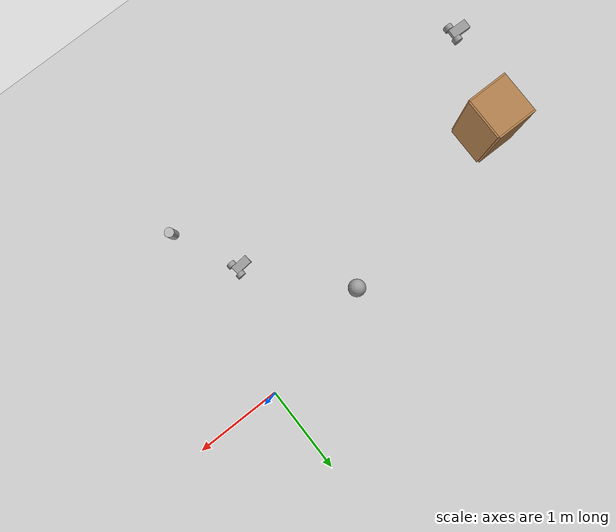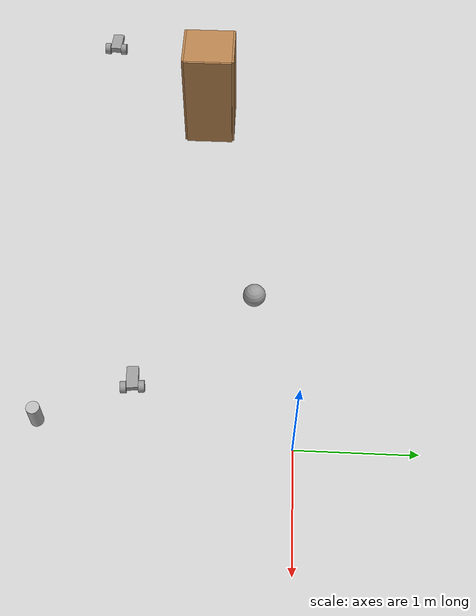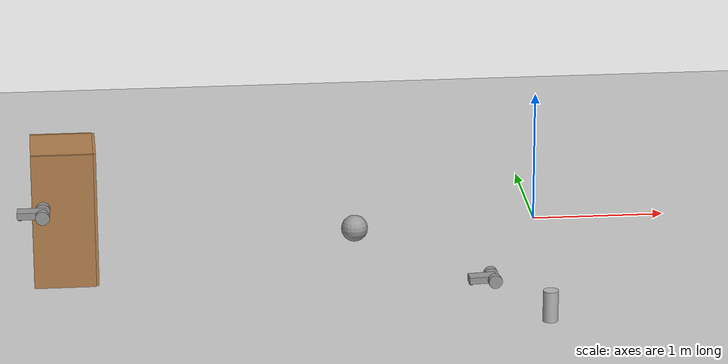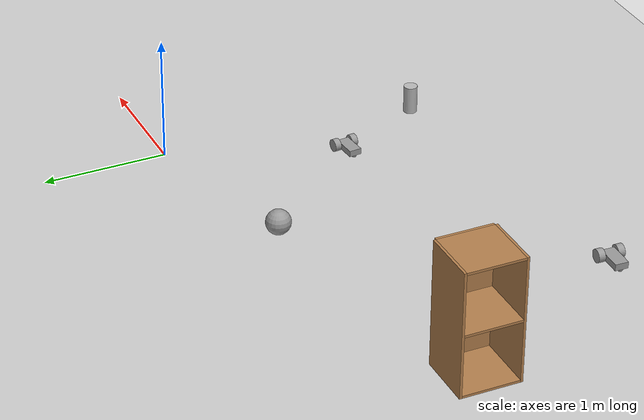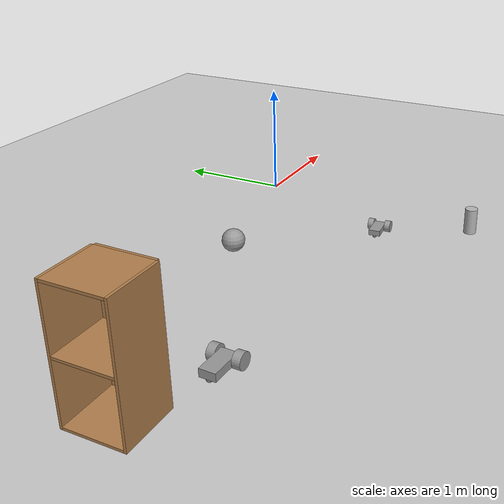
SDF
<sdf version="1.6">
 <world name="default">
  <model name="cabinet">
   <static>1</static>
   <link name="cabinet_bottom_plate">
    <inertial>
     <pose>0 0 -1 0 -0 0</pose>
     <inertia><ixx>2.05</ixx><ixy>0</ixy><ixz>0</ixz><iyy>2.05</iyy><iyz>0</iyz><izz>2.05</izz></inertia>
     <mass>25</mass>
    </inertial>
    <collision name="cabinet_bottom_plate_geom">
     <pose>0 0 0.01 0 -0 0</pose>
     <geometry><box><size>0.45 0.45 0.02</size></box></geometry>
    </collision>
    <visual name="cabinet_bottom_plate_geom_visual">
     <pose>0 0 0.01 0 -0 0</pose>
     <geometry><box><size>0.45 0.45 0.02</size></box></geometry>
     <material>
      <script><uri>file://media/materials/scripts/gazebo.material</uri><name>Gazebo/Wood</name></script>
     </material>
    </visual>
    <collision name="cabinet_bottom_plate_geom_cabinet_back_plate">
     <pose>0.235 0 0.51 0 -0 0</pose>
     <geometry><box><size>0.02 0.45 1.02</size></box></geometry>
    </collision>
    <visual name="cabinet_bottom_plate_geom_cabinet_back_plate_visual">
     <pose>0.235 0 0.51 0 -0 0</pose>
     <geometry><box><size>0.02 0.45 1.02</size></box></geometry>
     <material>
      <script><uri>file://media/materials/scripts/gazebo.material</uri><name>Gazebo/Wood</name></script>
     </material>
    </visual>
    <collision name="cabinet_bottom_plate_geom_cabinet_left_plate">
     <pose>0 0.235 0.51 0 -0 0</pose>
     <geometry><box><size>0.45 0.02 1.02</size></box></geometry>
    </collision>
    <visual name="cabinet_bottom_plate_geom_cabinet_left_plate_visual">
     <pose>0 0.235 0.51 0 -0 0</pose>
     <geometry><box><size>0.45 0.02 1.02</size></box></geometry>
     <material>
      <script><uri>file://media/materials/scripts/gazebo.material</uri><name>Gazebo/Wood</name></script>
     </material>
    </visual>
    <collision name="cabinet_bottom_plate_geom_cabinet_middle_plate">
     <pose>0 0 0.51 0 -0 0</pose>
     <geometry><box><size>0.45 0.45 0.02</size></box></geometry>
    </collision>
    <visual name="cabinet_bottom_plate_geom_cabinet_middle_plate_visual">
     <pose>0 0 0.51 0 -0 0</pose>
     <geometry><box><size>0.45 0.45 0.02</size></box></geometry>
     <material>
      <script><uri>file://media/materials/scripts/gazebo.material</uri><name>Gazebo/Wood</name></script>
     </material>
    </visual>
    <collision name="cabinet_bottom_plate_geom_cabinet_right_plate">
     <pose>0 -0.235 0.51 0 -0 0</pose>
     <geometry><box><size>0.45 0.02 1.02</size></box></geometry>
    </collision>
    <visual name="cabinet_bottom_plate_geom_cabinet_right_plate_visual">
     <pose>0 -0.235 0.51 0 -0 0</pose>
     <geometry><box><size>0.45 0.02 1.02</size></box></geometry>
     <material>
      <script><uri>file://media/materials/scripts/gazebo.material</uri><name>Gazebo/Wood</name></script>
     </material>
    </visual>
    <collision name="cabinet_bottom_plate_geom_cabinet_top_plate">
     <pose>0 0 1.01 0 -0 0</pose>
     <geometry><box><size>0.45 0.45 0.02</size></box></geometry>
    </collision>
    <visual name="cabinet_bottom_plate_geom_cabinet_top_plate_visual">
     <pose>0 0 1.01 0 -0 0</pose>
     <geometry><box><size>0.45 0.45 0.02</size></box></geometry>
     <material>
      <script><uri>file://media/materials/scripts/gazebo.material</uri><name>Gazebo/Wood</name></script>
     </material>
    </visual>
   </link>
   <pose>-3.59153 -0.861976 0 0 -0 0</pose>
  </model>
  <model name="beer">
   <link name="link">
    <pose>0 0 0.115 0 -0 0</pose>
    <inertial>
     <mass>0.39</mass>
     <inertia><ixx>0.00058</ixx><ixy>0</ixy><ixz>0</ixz><iyy>0.00058</iyy><iyz>0</iyz><izz>0.00019</izz></inertia>
    </inertial>
    <collision name="collision">
     <geometry><cylinder><radius>0.055</radius><length>0.23</length></cylinder></geometry>
    </collision>
    <visual name="visual">
     <geometry><cylinder><radius>0.055</radius><length>0.23</length></cylinder></geometry>
     <material>
      <script>
       <uri>model://beer/materials/scripts</uri>
       <uri>model://beer/materials/textures</uri>
       <name>Beer/Diffuse</name>
      </script>
     </material>
    </visual>
   </link>
   <pose>-0.171597 -2.07054 -7e-06 0 0 -1.1e-05</pose>
  </model>
  <model name="ground_plane">
   <static>1</static>
   <link name="link">
    <collision name="collision">
     <geometry><plane><normal>0 0 1</normal><size>100 100</size></plane></geometry>
     <surface><friction><ode><mu>100</mu><mu2>50</mu2></ode></friction></surface>
    </collision>
    <visual name="visual">
     <cast_shadows>0</cast_shadows>
     <geometry><plane><normal>0 0 1</normal><size>100 100</size></plane></geometry>
     <material>
      <script><uri>file://media/materials/scripts/gazebo.material</uri><name>Gazebo/Grey</name></script>
     </material>
    </visual>
   </link>
   <pose>3.65907 0.237725 0 0 -0 0</pose>
  </model>
  <model name="GoBot">
   <link name="link_1">
    <inertial>
     <mass>1</mass>
     <inertia>
      <ixx>0.166667</ixx>
      <ixy>0</ixy>
      <ixz>0</ixz>
      <iyy>0.166667</iyy>
      <iyz>0</iyz>
      <izz>0.166667</izz>
     </inertia>
    </inertial>
    <pose>-0.183443 0.115955 -0.003125 0 -0 0</pose>
    <visual name="visual">
     <geometry><box><size>0.2 0.1 0.05</size></box></geometry>
     <material>
      <lighting>1</lighting>
      <script><uri>file://media/materials/scripts/gazebo.material</uri><name>Gazebo/Grey</name></script>
      <shader type="pixel"><normal_map>__default__</normal_map></shader>
      <ambient>0.3 0.3 0.3 1</ambient>
      <diffuse>0.7 0.7 0.7 1</diffuse>
      <specular>0.01 0.01 0.01 1</specular>
      <emissive>0 0 0 1</emissive>
     </material>
    </visual>
    <collision name="collision">
     <geometry><box><size>0.2 0.1 0.05</size></box></geometry>
     <surface>
      <friction>
       <ode><mu>1</mu><mu2>1</mu2><fdir1>0 0 0</fdir1><slip1>0</slip1><slip2>0</slip2></ode>
       <torsional>
        <coefficient>1</coefficient>
        <patch_radius>0</patch_radius>
        <surface_radius>0</surface_radius>
        <use_patch_radius>1</use_patch_radius>
        <ode><slip>0</slip></ode>
       </torsional>
      </friction>
      <bounce><restitution_coefficient>0</restitution_coefficient><threshold>1e+06</threshold></bounce>
      <contact>
       <collide_without_contact>0</collide_without_contact>
       <collide_without_contact_bitmask>1</collide_without_contact_bitmask>
       <collide_bitmask>1</collide_bitmask>
       <ode>
        <soft_cfm>0</soft_cfm>
        <soft_erp>0.2</soft_erp>
        <kp>1e+13</kp>
        <kd>1</kd>
        <max_vel>0.01</max_vel>
        <min_depth>0</min_depth>
       </ode>
       <bullet>
        <split_impulse>1</split_impulse>
        <split_impulse_penetration_threshold>-0.01</split_impulse_penetration_threshold>
        <soft_cfm>0</soft_cfm>
        <soft_erp>0.2</soft_erp>
        <kp>1e+13</kp>
        <kd>1</kd>
       </bullet>
      </contact>
     </surface>
    </collision>
   </link>
   <link name="link_2">
    <inertial>
     <mass>1</mass>
     <inertia><ixx>0.145833</ixx><ixy>0</ixy><ixz>0</ixz><iyy>0.145833</iyy><iyz>0</iyz><izz>0.125</izz></inertia>
    </inertial>
    <pose>-0.103443 0.040955 -0.003125 1.5708 -0 0</pose>
    <visual name="visual">
     <geometry><cylinder><radius>0.05</radius><length>0.05</length></cylinder></geometry>
     <material>
      <lighting>1</lighting>
      <script><uri>file://media/materials/scripts/gazebo.material</uri><name>Gazebo/Grey</name></script>
      <shader type="pixel"><normal_map>__default__</normal_map></shader>
      <ambient>0.3 0.3 0.3 1</ambient>
      <diffuse>0.7 0.7 0.7 1</diffuse>
      <specular>0.01 0.01 0.01 1</specular>
      <emissive>0 0 0 1</emissive>
     </material>
    </visual>
    <collision name="collision">
     <geometry><cylinder><radius>0.05</radius><length>0.05</length></cylinder></geometry>
     <surface>
      <friction>
       <ode><mu>1</mu><mu2>1</mu2><fdir1>0 0 0</fdir1><slip1>0</slip1><slip2>0</slip2></ode>
       <torsional>
        <coefficient>1</coefficient>
        <patch_radius>0</patch_radius>
        <surface_radius>0</surface_radius>
        <use_patch_radius>1</use_patch_radius>
        <ode><slip>0</slip></ode>
       </torsional>
      </friction>
      <bounce><restitution_coefficient>0</restitution_coefficient><threshold>1e+06</threshold></bounce>
      <contact>
       <collide_without_contact>0</collide_without_contact>
       <collide_without_contact_bitmask>1</collide_without_contact_bitmask>
       <collide_bitmask>1</collide_bitmask>
       <ode>
        <soft_cfm>0</soft_cfm>
        <soft_erp>0.2</soft_erp>
        <kp>1e+13</kp>
        <kd>1</kd>
        <max_vel>0.01</max_vel>
        <min_depth>0</min_depth>
       </ode>
       <bullet>
        <split_impulse>1</split_impulse>
        <split_impulse_penetration_threshold>-0.01</split_impulse_penetration_threshold>
        <soft_cfm>0</soft_cfm>
        <soft_erp>0.2</soft_erp>
        <kp>1e+13</kp>
        <kd>1</kd>
       </bullet>
      </contact>
     </surface>
    </collision>
   </link>
   <link name="link_2_clone">
    <inertial>
     <mass>1</mass>
     <inertia><ixx>0.145833</ixx><ixy>0</ixy><ixz>0</ixz><iyy>0.145833</iyy><iyz>0</iyz><izz>0.125</izz></inertia>
    </inertial>
    <pose>-0.103443 0.190955 -0.003125 1.5708 -0 0</pose>
    <visual name="visual">
     <geometry><cylinder><radius>0.05</radius><length>0.05</length></cylinder></geometry>
     <material>
      <lighting>1</lighting>
      <script><uri>file://media/materials/scripts/gazebo.material</uri><name>Gazebo/Grey</name></script>
      <shader type="pixel"><normal_map>__default__</normal_map></shader>
      <ambient>0.3 0.3 0.3 1</ambient>
      <diffuse>0.7 0.7 0.7 1</diffuse>
      <specular>0.01 0.01 0.01 1</specular>
      <emissive>0 0 0 1</emissive>
     </material>
    </visual>
    <collision name="collision">
     <geometry><cylinder><radius>0.05</radius><length>0.05</length></cylinder></geometry>
     <surface>
      <friction>
       <ode><mu>1</mu><mu2>1</mu2><fdir1>0 0 0</fdir1><slip1>0</slip1><slip2>0</slip2></ode>
       <torsional>
        <coefficient>1</coefficient>
        <patch_radius>0</patch_radius>
        <surface_radius>0</surface_radius>
        <use_patch_radius>1</use_patch_radius>
        <ode><slip>0</slip></ode>
       </torsional>
      </friction>
      <bounce><restitution_coefficient>0</restitution_coefficient><threshold>1e+06</threshold></bounce>
      <contact>
       <collide_without_contact>0</collide_without_contact>
       <collide_without_contact_bitmask>1</collide_without_contact_bitmask>
       <collide_bitmask>1</collide_bitmask>
       <ode>
        <soft_cfm>0</soft_cfm>
        <soft_erp>0.2</soft_erp>
        <kp>1e+13</kp>
        <kd>1</kd>
        <max_vel>0.01</max_vel>
        <min_depth>0</min_depth>
       </ode>
       <bullet>
        <split_impulse>1</split_impulse>
        <split_impulse_penetration_threshold>-0.01</split_impulse_penetration_threshold>
        <soft_cfm>0</soft_cfm>
        <soft_erp>0.2</soft_erp>
        <kp>1e+13</kp>
        <kd>1</kd>
       </bullet>
      </contact>
     </surface>
    </collision>
   </link>
   <link name="link_3">
    <inertial>
     <mass>1</mass>
     <inertia><ixx>0.1</ixx><ixy>0</ixy><ixz>0</ixz><iyy>0.1</iyy><iyz>0</iyz><izz>0.1</izz></inertia>
    </inertial>
    <pose>-0.263442 0.115955 -0.033125 0 -0 0</pose>
    <visual name="visual">
     <geometry><sphere><radius>0.02</radius></sphere></geometry>
     <material>
      <lighting>1</lighting>
      <script><uri>file://media/materials/scripts/gazebo.material</uri><name>Gazebo/Grey</name></script>
      <shader type="pixel"><normal_map>__default__</normal_map></shader>
      <ambient>0.3 0.3 0.3 1</ambient>
      <diffuse>0.7 0.7 0.7 1</diffuse>
      <specular>0.01 0.01 0.01 1</specular>
      <emissive>0 0 0 1</emissive>
     </material>
    </visual>
    <collision name="collision">
     <geometry><sphere><radius>0.02</radius></sphere></geometry>
     <surface>
      <friction>
       <ode><mu>1</mu><mu2>1</mu2><fdir1>0 0 0</fdir1><slip1>0</slip1><slip2>0</slip2></ode>
       <torsional>
        <coefficient>1</coefficient>
        <patch_radius>0</patch_radius>
        <surface_radius>0</surface_radius>
        <use_patch_radius>1</use_patch_radius>
        <ode><slip>0</slip></ode>
       </torsional>
      </friction>
      <bounce><restitution_coefficient>0</restitution_coefficient><threshold>1e+06</threshold></bounce>
      <contact>
       <collide_without_contact>0</collide_without_contact>
       <collide_without_contact_bitmask>1</collide_without_contact_bitmask>
       <collide_bitmask>1</collide_bitmask>
       <ode>
        <soft_cfm>0</soft_cfm>
        <soft_erp>0.2</soft_erp>
        <kp>1e+13</kp>
        <kd>1</kd>
        <max_vel>0.01</max_vel>
        <min_depth>0</min_depth>
       </ode>
       <bullet>
        <split_impulse>1</split_impulse>
        <split_impulse_penetration_threshold>-0.01</split_impulse_penetration_threshold>
        <soft_cfm>0</soft_cfm>
        <soft_erp>0.2</soft_erp>
        <kp>1e+13</kp>
        <kd>1</kd>
       </bullet>
      </contact>
     </surface>
    </collision>
   </link>
   <joint name="link_1_JOINT_0" type="revolute">
    <parent>link_1</parent>
    <child>link_2</child>
    <axis>
     <xyz>0 0 1</xyz>
     <limit>
      <lower>-1.79769e+308</lower>
      <upper>1.79769e+308</upper>
      <effort>-1</effort>
      <velocity>-1</velocity>
     </limit>
     <dynamics>
      <spring_reference>0</spring_reference>
      <spring_stiffness>0</spring_stiffness>
      <damping>0</damping>
     </dynamics>
     <use_parent_model_frame>0</use_parent_model_frame>
    </axis>
    <physics>
     <ode><limit><cfm>0</cfm><erp>0.2</erp></limit><suspension><cfm>0</cfm><erp>0.2</erp></suspension></ode>
    </physics>
   </joint>
   <joint name="link_1_JOINT_1" type="revolute">
    <parent>link_1</parent>
    <child>link_2_clone</child>
    <axis>
     <xyz>0 0 1</xyz>
     <limit>
      <lower>-1.79769e+308</lower>
      <upper>1.79769e+308</upper>
      <effort>-1</effort>
      <velocity>-1</velocity>
     </limit>
     <dynamics>
      <spring_reference>0</spring_reference>
      <spring_stiffness>0</spring_stiffness>
      <damping>0</damping>
     </dynamics>
     <use_parent_model_frame>0</use_parent_model_frame>
    </axis>
    <physics>
     <ode><limit><cfm>0</cfm><erp>0.2</erp></limit><suspension><cfm>0</cfm><erp>0.2</erp></suspension></ode>
    </physics>
   </joint>
   <joint name="link_1_JOINT_2" type="ball">
    <parent>link_1</parent>
    <child>link_3</child>
    <physics>
     <ode><limit><cfm>0</cfm><erp>0.2</erp></limit><suspension><cfm>0</cfm><erp>0.2</erp></suspension></ode>
    </physics>
   </joint>
   <static>0</static>
   <pose>-0.372255 -1.43458 0.053124 -1e-06 -0 0.086851</pose>
  </model>
  <model name="GoBot_clone">
   <link name="link_1">
    <inertial>
     <mass>1</mass>
     <inertia>
      <ixx>0.166667</ixx>
      <ixy>0</ixy>
      <ixz>0</ixz>
      <iyy>0.166667</iyy>
      <iyz>0</iyz>
      <izz>0.166667</izz>
     </inertia>
    </inertial>
    <pose>-0.183443 0.115955 -0.003125 0 -0 0</pose>
    <visual name="visual">
     <geometry><box><size>0.2 0.1 0.05</size></box></geometry>
     <material>
      <lighting>1</lighting>
      <script><uri>file://media/materials/scripts/gazebo.material</uri><name>Gazebo/Grey</name></script>
      <shader type="pixel"><normal_map>__default__</normal_map></shader>
      <ambient>0.3 0.3 0.3 1</ambient>
      <diffuse>0.7 0.7 0.7 1</diffuse>
      <specular>0.01 0.01 0.01 1</specular>
      <emissive>0 0 0 1</emissive>
     </material>
    </visual>
    <collision name="collision">
     <geometry><box><size>0.2 0.1 0.05</size></box></geometry>
     <surface>
      <friction>
       <ode><mu>1</mu><mu2>1</mu2><fdir1>0 0 0</fdir1><slip1>0</slip1><slip2>0</slip2></ode>
       <torsional>
        <coefficient>1</coefficient>
        <patch_radius>0</patch_radius>
        <surface_radius>0</surface_radius>
        <use_patch_radius>1</use_patch_radius>
        <ode><slip>0</slip></ode>
       </torsional>
      </friction>
      <bounce><restitution_coefficient>0</restitution_coefficient><threshold>1e+06</threshold></bounce>
      <contact>
       <collide_without_contact>0</collide_without_contact>
       <collide_without_contact_bitmask>1</collide_without_contact_bitmask>
       <collide_bitmask>1</collide_bitmask>
       <ode>
        <soft_cfm>0</soft_cfm>
        <soft_erp>0.2</soft_erp>
        <kp>1e+13</kp>
        <kd>1</kd>
        <max_vel>0.01</max_vel>
        <min_depth>0</min_depth>
       </ode>
       <bullet>
        <split_impulse>1</split_impulse>
        <split_impulse_penetration_threshold>-0.01</split_impulse_penetration_threshold>
        <soft_cfm>0</soft_cfm>
        <soft_erp>0.2</soft_erp>
        <kp>1e+13</kp>
        <kd>1</kd>
       </bullet>
      </contact>
     </surface>
    </collision>
   </link>
   <link name="link_2">
    <inertial>
     <mass>1</mass>
     <inertia><ixx>0.145833</ixx><ixy>0</ixy><ixz>0</ixz><iyy>0.145833</iyy><iyz>0</iyz><izz>0.125</izz></inertia>
    </inertial>
    <pose>-0.103443 0.040955 -0.003125 1.5708 -0 0</pose>
    <visual name="visual">
     <geometry><cylinder><radius>0.05</radius><length>0.05</length></cylinder></geometry>
     <material>
      <lighting>1</lighting>
      <script><uri>file://media/materials/scripts/gazebo.material</uri><name>Gazebo/Grey</name></script>
      <shader type="pixel"><normal_map>__default__</normal_map></shader>
      <ambient>0.3 0.3 0.3 1</ambient>
      <diffuse>0.7 0.7 0.7 1</diffuse>
      <specular>0.01 0.01 0.01 1</specular>
      <emissive>0 0 0 1</emissive>
     </material>
    </visual>
    <collision name="collision">
     <geometry><cylinder><radius>0.05</radius><length>0.05</length></cylinder></geometry>
     <surface>
      <friction>
       <ode><mu>1</mu><mu2>1</mu2><fdir1>0 0 0</fdir1><slip1>0</slip1><slip2>0</slip2></ode>
       <torsional>
        <coefficient>1</coefficient>
        <patch_radius>0</patch_radius>
        <surface_radius>0</surface_radius>
        <use_patch_radius>1</use_patch_radius>
        <ode><slip>0</slip></ode>
       </torsional>
      </friction>
      <bounce><restitution_coefficient>0</restitution_coefficient><threshold>1e+06</threshold></bounce>
      <contact>
       <collide_without_contact>0</collide_without_contact>
       <collide_without_contact_bitmask>1</collide_without_contact_bitmask>
       <collide_bitmask>1</collide_bitmask>
       <ode>
        <soft_cfm>0</soft_cfm>
        <soft_erp>0.2</soft_erp>
        <kp>1e+13</kp>
        <kd>1</kd>
        <max_vel>0.01</max_vel>
        <min_depth>0</min_depth>
       </ode>
       <bullet>
        <split_impulse>1</split_impulse>
        <split_impulse_penetration_threshold>-0.01</split_impulse_penetration_threshold>
        <soft_cfm>0</soft_cfm>
        <soft_erp>0.2</soft_erp>
        <kp>1e+13</kp>
        <kd>1</kd>
       </bullet>
      </contact>
     </surface>
    </collision>
   </link>
   <link name="link_2_clone">
    <inertial>
     <mass>1</mass>
     <inertia><ixx>0.145833</ixx><ixy>0</ixy><ixz>0</ixz><iyy>0.145833</iyy><iyz>0</iyz><izz>0.125</izz></inertia>
    </inertial>
    <pose>-0.103443 0.190955 -0.003125 1.5708 -0 0</pose>
    <visual name="visual">
     <geometry><cylinder><radius>0.05</radius><length>0.05</length></cylinder></geometry>
     <material>
      <lighting>1</lighting>
      <script><uri>file://media/materials/scripts/gazebo.material</uri><name>Gazebo/Grey</name></script>
      <shader type="pixel"><normal_map>__default__</normal_map></shader>
      <ambient>0.3 0.3 0.3 1</ambient>
      <diffuse>0.7 0.7 0.7 1</diffuse>
      <specular>0.01 0.01 0.01 1</specular>
      <emissive>0 0 0 1</emissive>
     </material>
    </visual>
    <collision name="collision">
     <geometry><cylinder><radius>0.05</radius><length>0.05</length></cylinder></geometry>
     <surface>
      <friction>
       <ode><mu>1</mu><mu2>1</mu2><fdir1>0 0 0</fdir1><slip1>0</slip1><slip2>0</slip2></ode>
       <torsional>
        <coefficient>1</coefficient>
        <patch_radius>0</patch_radius>
        <surface_radius>0</surface_radius>
        <use_patch_radius>1</use_patch_radius>
        <ode><slip>0</slip></ode>
       </torsional>
      </friction>
      <bounce><restitution_coefficient>0</restitution_coefficient><threshold>1e+06</threshold></bounce>
      <contact>
       <collide_without_contact>0</collide_without_contact>
       <collide_without_contact_bitmask>1</collide_without_contact_bitmask>
       <collide_bitmask>1</collide_bitmask>
       <ode>
        <soft_cfm>0</soft_cfm>
        <soft_erp>0.2</soft_erp>
        <kp>1e+13</kp>
        <kd>1</kd>
        <max_vel>0.01</max_vel>
        <min_depth>0</min_depth>
       </ode>
       <bullet>
        <split_impulse>1</split_impulse>
        <split_impulse_penetration_threshold>-0.01</split_impulse_penetration_threshold>
        <soft_cfm>0</soft_cfm>
        <soft_erp>0.2</soft_erp>
        <kp>1e+13</kp>
        <kd>1</kd>
       </bullet>
      </contact>
     </surface>
    </collision>
   </link>
   <link name="link_3">
    <inertial>
     <mass>1</mass>
     <inertia><ixx>0.1</ixx><ixy>0</ixy><ixz>0</ixz><iyy>0.1</iyy><iyz>0</iyz><izz>0.1</izz></inertia>
    </inertial>
    <pose>-0.263442 0.115955 -0.033125 0 -0 0</pose>
    <visual name="visual">
     <geometry><sphere><radius>0.02</radius></sphere></geometry>
     <material>
      <lighting>1</lighting>
      <script><uri>file://media/materials/scripts/gazebo.material</uri><name>Gazebo/Grey</name></script>
      <shader type="pixel"><normal_map>__default__</normal_map></shader>
      <ambient>0.3 0.3 0.3 1</ambient>
      <diffuse>0.7 0.7 0.7 1</diffuse>
      <specular>0.01 0.01 0.01 1</specular>
      <emissive>0 0 0 1</emissive>
     </material>
    </visual>
    <collision name="collision">
     <geometry><sphere><radius>0.02</radius></sphere></geometry>
     <surface>
      <friction>
       <ode><mu>1</mu><mu2>1</mu2><fdir1>0 0 0</fdir1><slip1>0</slip1><slip2>0</slip2></ode>
       <torsional>
        <coefficient>1</coefficient>
        <patch_radius>0</patch_radius>
        <surface_radius>0</surface_radius>
        <use_patch_radius>1</use_patch_radius>
        <ode><slip>0</slip></ode>
       </torsional>
      </friction>
      <bounce><restitution_coefficient>0</restitution_coefficient><threshold>1e+06</threshold></bounce>
      <contact>
       <collide_without_contact>0</collide_without_contact>
       <collide_without_contact_bitmask>1</collide_without_contact_bitmask>
       <collide_bitmask>1</collide_bitmask>
       <ode>
        <soft_cfm>0</soft_cfm>
        <soft_erp>0.2</soft_erp>
        <kp>1e+13</kp>
        <kd>1</kd>
        <max_vel>0.01</max_vel>
        <min_depth>0</min_depth>
       </ode>
       <bullet>
        <split_impulse>1</split_impulse>
        <split_impulse_penetration_threshold>-0.01</split_impulse_penetration_threshold>
        <soft_cfm>0</soft_cfm>
        <soft_erp>0.2</soft_erp>
        <kp>1e+13</kp>
        <kd>1</kd>
       </bullet>
      </contact>
     </surface>
    </collision>
   </link>
   <joint name="link_1_JOINT_0" type="revolute">
    <parent>link_1</parent>
    <child>link_2</child>
    <axis>
     <xyz>0 0 1</xyz>
     <limit>
      <lower>-1.79769e+308</lower>
      <upper>1.79769e+308</upper>
      <effort>-1</effort>
      <velocity>-1</velocity>
     </limit>
     <dynamics>
      <spring_reference>0</spring_reference>
      <spring_stiffness>0</spring_stiffness>
      <damping>0</damping>
     </dynamics>
     <use_parent_model_frame>0</use_parent_model_frame>
    </axis>
    <physics>
     <ode><limit><cfm>0</cfm><erp>0.2</erp></limit><suspension><cfm>0</cfm><erp>0.2</erp></suspension></ode>
    </physics>
   </joint>
   <joint name="link_1_JOINT_1" type="revolute">
    <parent>link_1</parent>
    <child>link_2_clone</child>
    <axis>
     <xyz>0 0 1</xyz>
     <limit>
      <lower>-1.79769e+308</lower>
      <upper>1.79769e+308</upper>
      <effort>-1</effort>
      <velocity>-1</velocity>
     </limit>
     <dynamics>
      <spring_reference>0</spring_reference>
      <spring_stiffness>0</spring_stiffness>
      <damping>0</damping>
     </dynamics>
     <use_parent_model_frame>0</use_parent_model_frame>
    </axis>
    <physics>
     <ode><limit><cfm>0</cfm><erp>0.2</erp></limit><suspension><cfm>0</cfm><erp>0.2</erp></suspension></ode>
    </physics>
   </joint>
   <joint name="link_1_JOINT_2" type="ball">
    <parent>link_1</parent>
    <child>link_3</child>
    <physics>
     <ode><limit><cfm>0</cfm><erp>0.2</erp></limit><suspension><cfm>0</cfm><erp>0.2</erp></suspension></ode>
    </physics>
   </joint>
   <static>0</static>
   <pose>-3.6383 -1.88884 0.828126 1e-06 -9e-06 -0.029893</pose>
  </model>
  <model name="my_ball">
   <link name="link_0">
    <inertial>
     <mass>1</mass>
     <inertia><ixx>0.1</ixx><ixy>0</ixy><ixz>0</ixz><iyy>0.1</iyy><iyz>0</iyz><izz>0.1</izz></inertia>
    </inertial>
    <visual name="visual">
     <geometry><sphere><radius>0.1</radius></sphere></geometry>
     <material>
      <lighting>1</lighting>
      <script><uri>file://media/materials/scripts/gazebo.material</uri><name>Gazebo/Grey</name></script>
      <shader type="pixel"><normal_map>__default__</normal_map></shader>
      <ambient>1 1 1 1</ambient>
      <diffuse>1 1 1 1</diffuse>
      <specular>1 1 1 1</specular>
      <emissive>1 1 1 1</emissive>
     </material>
    </visual>
    <collision name="collision">
     <geometry><sphere><radius>0.1</radius></sphere></geometry>
     <surface>
      <friction>
       <ode><mu>1</mu><mu2>1</mu2><fdir1>0 0 0</fdir1><slip1>0</slip1><slip2>0</slip2></ode>
       <torsional>
        <coefficient>1</coefficient>
        <patch_radius>0</patch_radius>
        <surface_radius>0</surface_radius>
        <use_patch_radius>1</use_patch_radius>
        <ode><slip>0</slip></ode>
       </torsional>
      </friction>
      <bounce><restitution_coefficient>0</restitution_coefficient><threshold>1e+06</threshold></bounce>
      <contact>
       <collide_without_contact>0</collide_without_contact>
       <collide_without_contact_bitmask>1</collide_without_contact_bitmask>
       <collide_bitmask>1</collide_bitmask>
       <ode>
        <soft_cfm>0</soft_cfm>
        <soft_erp>0.2</soft_erp>
        <kp>1e+13</kp>
        <kd>1</kd>
        <max_vel>0.01</max_vel>
        <min_depth>0</min_depth>
       </ode>
       <bullet>
        <split_impulse>1</split_impulse>
        <split_impulse_penetration_threshold>-0.01</split_impulse_penetration_threshold>
        <soft_cfm>0</soft_cfm>
        <soft_erp>0.2</soft_erp>
        <kp>1e+13</kp>
        <kd>1</kd>
       </bullet>
      </contact>
     </surface>
    </collision>
   </link>
   <static>0</static>
   <pose>-1.40852 -0.350677 0.1 0 -0 0</pose>
  </model>
 </world>
</sdf>
